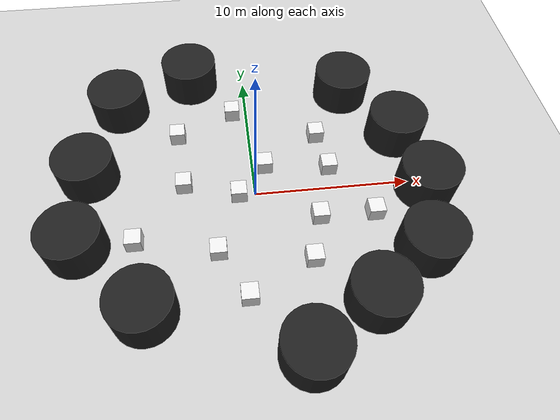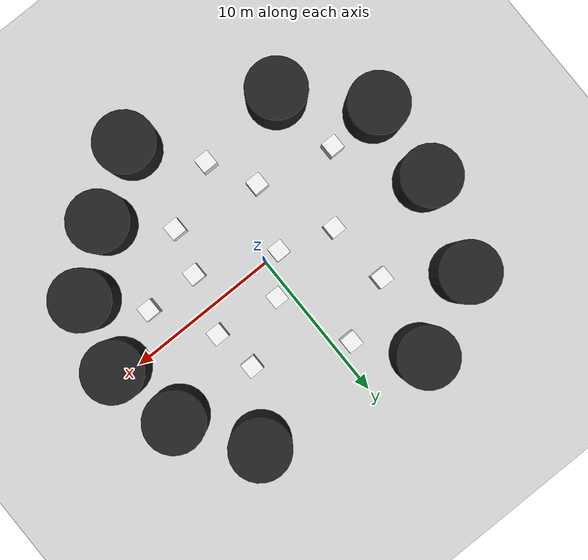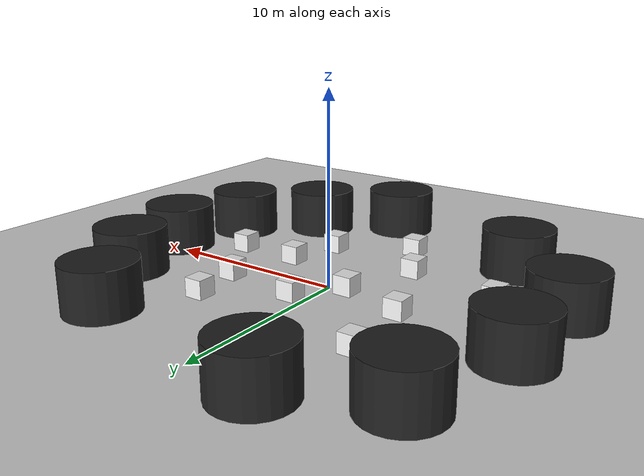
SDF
<sdf version="1.7">
 <world name="default">
  <light name="sun" type="directional">
   <pose>0 0 10 0 -0 0</pose>
   <diffuse>0.8 0.8 0.8 1</diffuse>
   <specular>0.2 0.2 0.2 1</specular>
   <attenuation>
    <range>1000</range>
    <constant>0.9</constant>
    <linear>0.01</linear>
    <quadratic>0.001</quadratic>
   </attenuation>
   <direction>-0.5 0.1 -0.9</direction>
   <spot><inner_angle>0</inner_angle><outer_angle>0</outer_angle><falloff>0</falloff></spot>
  </light>
  <model name="ground_plane">
   <static>1</static>
   <link name="link">
    <collision name="collision">
     <geometry><plane><normal>0 0 1</normal><size>100 100</size></plane></geometry>
     <surface>
      <contact><collide_bitmask>65535</collide_bitmask></contact>
      <friction><ode><mu>100</mu><mu2>50</mu2></ode></friction>
     </surface>
    </collision>
    <visual name="visual">
     <cast_shadows>0</cast_shadows>
     <geometry><plane><normal>0 0 1</normal><size>100 100</size></plane></geometry>
     <material>
      <script><uri>file://media/materials/scripts/gazebo.material</uri><name>Gazebo/Grey</name></script>
     </material>
    </visual>
   </link>
  </model>
  <gravity>0 0 -9.8</gravity>
  <magnetic_field>6e-06 2.3e-05 -4.2e-05</magnetic_field>
  <atmosphere type="adiabatic"/>
  <physics type="ode">
   <max_step_size>0.001</max_step_size>
   <real_time_factor>1</real_time_factor>
   <real_time_update_rate>1000</real_time_update_rate>
  </physics>
  <scene><ambient>0.4 0.4 0.4 1</ambient><background>0.7 0.7 0.7 1</background><shadows>1</shadows></scene>
  <audio><device>default</device></audio>
  <spherical_coordinates>
   <surface_model>EARTH_WGS84</surface_model>
   <latitude_deg>0</latitude_deg>
   <longitude_deg>0</longitude_deg>
   <elevation>0</elevation>
   <heading_deg>0</heading_deg>
  </spherical_coordinates>
  <model name="unit_box">
   <pose>0.808134 2.09924 0.499995 0 1e-05 0</pose>
   <link name="link">
    <inertial>
     <mass>1</mass>
     <inertia>
      <ixx>0.166667</ixx>
      <ixy>0</ixy>
      <ixz>0</ixz>
      <iyy>0.166667</iyy>
      <iyz>0</iyz>
      <izz>0.166667</izz>
     </inertia>
    </inertial>
    <collision name="collision"><geometry><box><size>1 1 1</size></box></geometry></collision>
    <visual name="visual">
     <geometry><box><size>1 1 1</size></box></geometry>
     <material>
      <script><name>Gazebo/White</name><uri>file://media/materials/scripts/gazebo.material</uri></script>
     </material>
    </visual>
   </link>
  </model>
  <model name="unit_box_clone">
   <pose>3.83258 -2.13639 0.499995 1e-05 -0 0</pose>
   <link name="link">
    <inertial>
     <mass>1</mass>
     <inertia>
      <ixx>0.166667</ixx>
      <ixy>0</ixy>
      <ixz>0</ixz>
      <iyy>0.166667</iyy>
      <iyz>0</iyz>
      <izz>0.166667</izz>
     </inertia>
    </inertial>
    <collision name="collision"><geometry><box><size>1 1 1</size></box></geometry></collision>
    <visual name="visual">
     <geometry><box><size>1 1 1</size></box></geometry>
     <material>
      <script><name>Gazebo/White</name><uri>file://media/materials/scripts/gazebo.material</uri></script>
     </material>
    </visual>
   </link>
  </model>
  <model name="unit_box_clone_0">
   <pose>-2.58516 -4 0.499995 0 1e-05 0</pose>
   <link name="link">
    <inertial>
     <mass>1</mass>
     <inertia>
      <ixx>0.166667</ixx>
      <ixy>0</ixy>
      <ixz>0</ixz>
      <iyy>0.166667</iyy>
      <iyz>0</iyz>
      <izz>0.166667</izz>
     </inertia>
    </inertial>
    <collision name="collision"><geometry><box><size>1 1 1</size></box></geometry></collision>
    <visual name="visual">
     <geometry><box><size>1 1 1</size></box></geometry>
     <material>
      <script><name>Gazebo/White</name><uri>file://media/materials/scripts/gazebo.material</uri></script>
     </material>
    </visual>
   </link>
  </model>
  <model name="unit_box_clone_1">
   <pose>-4.54143 1.00001 0.499995 1e-05 -0 0</pose>
   <link name="link">
    <inertial>
     <mass>1</mass>
     <inertia>
      <ixx>0.166667</ixx>
      <ixy>0</ixy>
      <ixz>0</ixz>
      <iyy>0.166667</iyy>
      <iyz>0</iyz>
      <izz>0.166667</izz>
     </inertia>
    </inertial>
    <collision name="collision"><geometry><box><size>1 1 1</size></box></geometry></collision>
    <visual name="visual">
     <geometry><box><size>1 1 1</size></box></geometry>
     <material>
      <script><name>Gazebo/White</name><uri>file://media/materials/scripts/gazebo.material</uri></script>
     </material>
    </visual>
   </link>
  </model>
  <model name="unit_box_clone_2">
   <pose>3 -5 0.499995 0 1e-05 0</pose>
   <link name="link">
    <inertial>
     <mass>1</mass>
     <inertia>
      <ixx>0.166667</ixx>
      <ixy>0</ixy>
      <ixz>0</ixz>
      <iyy>0.166667</iyy>
      <iyz>0</iyz>
      <izz>0.166667</izz>
     </inertia>
    </inertial>
    <collision name="collision"><geometry><box><size>1 1 1</size></box></geometry></collision>
    <visual name="visual">
     <geometry><box><size>1 1 1</size></box></geometry>
     <material>
      <script><name>Gazebo/White</name><uri>file://media/materials/scripts/gazebo.material</uri></script>
     </material>
    </visual>
   </link>
  </model>
  <model name="unit_box_clone_3">
   <pose>5 1.58247 0.499995 1e-05 -0 0</pose>
   <link name="link">
    <inertial>
     <mass>1</mass>
     <inertia>
      <ixx>0.166667</ixx>
      <ixy>0</ixy>
      <ixz>0</ixz>
      <iyy>0.166667</iyy>
      <iyz>0</iyz>
      <izz>0.166667</izz>
     </inertia>
    </inertial>
    <collision name="collision"><geometry><box><size>1 1 1</size></box></geometry></collision>
    <visual name="visual">
     <geometry><box><size>1 1 1</size></box></geometry>
     <material>
      <script><name>Gazebo/White</name><uri>file://media/materials/scripts/gazebo.material</uri></script>
     </material>
    </visual>
   </link>
  </model>
  <model name="unit_box_clone_4">
   <pose>-1.00001 7 0.499995 1e-05 -0 0</pose>
   <link name="link">
    <inertial>
     <mass>1</mass>
     <inertia>
      <ixx>0.166667</ixx>
      <ixy>0</ixy>
      <ixz>0</ixz>
      <iyy>0.166667</iyy>
      <iyz>0</iyz>
      <izz>0.166667</izz>
     </inertia>
    </inertial>
    <collision name="collision"><geometry><box><size>1 1 1</size></box></geometry></collision>
    <visual name="visual">
     <geometry><box><size>1 1 1</size></box></geometry>
     <material>
      <script><name>Gazebo/White</name><uri>file://media/materials/scripts/gazebo.material</uri></script>
     </material>
    </visual>
   </link>
  </model>
  <model name="unit_box_clone_5">
   <pose>-7.59948 -2.9058 0.499995 0 1e-05 0</pose>
   <link name="link">
    <inertial>
     <mass>1</mass>
     <inertia>
      <ixx>0.166667</ixx>
      <ixy>0</ixy>
      <ixz>0</ixz>
      <iyy>0.166667</iyy>
      <iyz>0</iyz>
      <izz>0.166667</izz>
     </inertia>
    </inertial>
    <collision name="collision"><geometry><box><size>1 1 1</size></box></geometry></collision>
    <visual name="visual">
     <geometry><box><size>1 1 1</size></box></geometry>
     <material>
      <script><name>Gazebo/White</name><uri>file://media/materials/scripts/gazebo.material</uri></script>
     </material>
    </visual>
   </link>
  </model>
  <model name="unit_box_clone_6">
   <pose>-1.00001 -7 0.499995 1e-05 -0 0</pose>
   <link name="link">
    <inertial>
     <mass>1</mass>
     <inertia>
      <ixx>0.166667</ixx>
      <ixy>0</ixy>
      <ixz>0</ixz>
      <iyy>0.166667</iyy>
      <iyz>0</iyz>
      <izz>0.166667</izz>
     </inertia>
    </inertial>
    <collision name="collision"><geometry><box><size>1 1 1</size></box></geometry></collision>
    <visual name="visual">
     <geometry><box><size>1 1 1</size></box></geometry>
     <material>
      <script><name>Gazebo/White</name><uri>file://media/materials/scripts/gazebo.material</uri></script>
     </material>
    </visual>
   </link>
  </model>
  <model name="unit_box_clone_7">
   <pose>-1.05827 -0.021586 0.499995 0 1e-05 0</pose>
   <link name="link">
    <inertial>
     <mass>1</mass>
     <inertia>
      <ixx>0.166667</ixx>
      <ixy>0</ixy>
      <ixz>0</ixz>
      <iyy>0.166667</iyy>
      <iyz>0</iyz>
      <izz>0.166667</izz>
     </inertia>
    </inertial>
    <collision name="collision"><geometry><box><size>1 1 1</size></box></geometry></collision>
    <visual name="visual">
     <geometry><box><size>1 1 1</size></box></geometry>
     <material>
      <script><name>Gazebo/White</name><uri>file://media/materials/scripts/gazebo.material</uri></script>
     </material>
    </visual>
   </link>
  </model>
  <model name="unit_box_clone_8">
   <pose>-4.86791 5.16709 0.499995 1e-05 -0 0</pose>
   <link name="link">
    <inertial>
     <mass>1</mass>
     <inertia>
      <ixx>0.166667</ixx>
      <ixy>0</ixy>
      <ixz>0</ixz>
      <iyy>0.166667</iyy>
      <iyz>0</iyz>
      <izz>0.166667</izz>
     </inertia>
    </inertial>
    <collision name="collision"><geometry><box><size>1 1 1</size></box></geometry></collision>
    <visual name="visual">
     <geometry><box><size>1 1 1</size></box></geometry>
     <material>
      <script><name>Gazebo/White</name><uri>file://media/materials/scripts/gazebo.material</uri></script>
     </material>
    </visual>
   </link>
  </model>
  <model name="unit_box_clone_9">
   <pose>4.59739 4.40156 0.499995 0 1e-05 0</pose>
   <link name="link">
    <inertial>
     <mass>1</mass>
     <inertia>
      <ixx>0.166667</ixx>
      <ixy>0</ixy>
      <ixz>0</ixz>
      <iyy>0.166667</iyy>
      <iyz>0</iyz>
      <izz>0.166667</izz>
     </inertia>
    </inertial>
    <collision name="collision"><geometry><box><size>1 1 1</size></box></geometry></collision>
    <visual name="visual">
     <geometry><box><size>1 1 1</size></box></geometry>
     <material>
      <script><name>Gazebo/White</name><uri>file://media/materials/scripts/gazebo.material</uri></script>
     </material>
    </visual>
   </link>
  </model>
  <model name="unit_box_clone_10">
   <pose>7.31295 -2.17579 0.499995 1e-05 -0 0</pose>
   <link name="link">
    <inertial>
     <mass>1</mass>
     <inertia>
      <ixx>0.166667</ixx>
      <ixy>0</ixy>
      <ixz>0</ixz>
      <iyy>0.166667</iyy>
      <iyz>0</iyz>
      <izz>0.166667</izz>
     </inertia>
    </inertial>
    <collision name="collision"><geometry><box><size>1 1 1</size></box></geometry></collision>
    <visual name="visual">
     <geometry><box><size>1 1 1</size></box></geometry>
     <material>
      <script><name>Gazebo/White</name><uri>file://media/materials/scripts/gazebo.material</uri></script>
     </material>
    </visual>
   </link>
  </model>
  <model name="unit_cylinder">
   <pose>-6.85905 -7.4303 1.26798 0 -0 5.3e-05</pose>
   <link name="link">
    <inertial>
     <mass>1</mass>
     <inertia><ixx>0.145833</ixx><ixy>0</ixy><ixz>0</ixz><iyy>0.145833</iyy><iyz>0</iyz><izz>0.125</izz></inertia>
    </inertial>
    <collision name="collision">
     <geometry><cylinder><radius>1.91047</radius><length>2.53596</length></cylinder></geometry>
    </collision>
    <visual name="visual">
     <geometry><cylinder><radius>1.91047</radius><length>2.53596</length></cylinder></geometry>
     <material>
      <script><name>Gazebo/Black</name><uri>file://media/materials/scripts/gazebo.material</uri></script>
     </material>
    </visual>
   </link>
  </model>
  <model name="unit_cylinder_clone">
   <pose>-10.9781 -3 1.26798 0 -0 5.3e-05</pose>
   <link name="link">
    <inertial>
     <mass>1</mass>
     <inertia><ixx>0.145833</ixx><ixy>0</ixy><ixz>0</ixz><iyy>0.145833</iyy><iyz>0</iyz><izz>0.125</izz></inertia>
    </inertial>
    <collision name="collision">
     <geometry><cylinder><radius>1.91047</radius><length>2.53597</length></cylinder></geometry>
    </collision>
    <visual name="visual">
     <geometry><cylinder><radius>1.91047</radius><length>2.53597</length></cylinder></geometry>
     <material>
      <script><name>Gazebo/Black</name><uri>file://media/materials/scripts/gazebo.material</uri></script>
     </material>
    </visual>
   </link>
  </model>
  <model name="unit_cylinder_clone_0">
   <pose>-10.667 2.23647 1.26798 0 -0 5.3e-05</pose>
   <link name="link">
    <inertial>
     <mass>1</mass>
     <inertia><ixx>0.145833</ixx><ixy>0</ixy><ixz>0</ixz><iyy>0.145833</iyy><iyz>0</iyz><izz>0.125</izz></inertia>
    </inertial>
    <collision name="collision">
     <geometry><cylinder><radius>1.91047</radius><length>2.53597</length></cylinder></geometry>
    </collision>
    <visual name="visual">
     <geometry><cylinder><radius>1.91047</radius><length>2.53597</length></cylinder></geometry>
     <material>
      <script><name>Gazebo/Black</name><uri>file://media/materials/scripts/gazebo.material</uri></script>
     </material>
    </visual>
   </link>
  </model>
  <model name="unit_cylinder_clone_1">
   <pose>-8.8653 7.9995 1.26798 0 -0 5.3e-05</pose>
   <link name="link">
    <inertial>
     <mass>1</mass>
     <inertia><ixx>0.145833</ixx><ixy>0</ixy><ixz>0</ixz><iyy>0.145833</iyy><iyz>0</iyz><izz>0.125</izz></inertia>
    </inertial>
    <collision name="collision">
     <geometry><cylinder><radius>1.91047</radius><length>2.53597</length></cylinder></geometry>
    </collision>
    <visual name="visual">
     <geometry><cylinder><radius>1.91047</radius><length>2.53597</length></cylinder></geometry>
     <material>
      <script><name>Gazebo/Black</name><uri>file://media/materials/scripts/gazebo.material</uri></script>
     </material>
    </visual>
   </link>
  </model>
  <model name="unit_cylinder_clone_2">
   <pose>-3.8335 10.2981 1.26798 0 -0 5.3e-05</pose>
   <link name="link">
    <inertial>
     <mass>1</mass>
     <inertia><ixx>0.145833</ixx><ixy>0</ixy><ixz>0</ixz><iyy>0.145833</iyy><iyz>0</iyz><izz>0.125</izz></inertia>
    </inertial>
    <collision name="collision">
     <geometry><cylinder><radius>1.91047</radius><length>2.53597</length></cylinder></geometry>
    </collision>
    <visual name="visual">
     <geometry><cylinder><radius>1.91047</radius><length>2.53597</length></cylinder></geometry>
     <material>
      <script><name>Gazebo/Black</name><uri>file://media/materials/scripts/gazebo.material</uri></script>
     </material>
    </visual>
   </link>
  </model>
  <model name="unit_cylinder_clone_3">
   <pose>7.08288 8.3023 1.26798 0 -0 5.3e-05</pose>
   <link name="link">
    <inertial>
     <mass>1</mass>
     <inertia><ixx>0.145833</ixx><ixy>0</ixy><ixz>0</ixz><iyy>0.145833</iyy><iyz>0</iyz><izz>0.125</izz></inertia>
    </inertial>
    <collision name="collision">
     <geometry><cylinder><radius>1.91047</radius><length>2.53597</length></cylinder></geometry>
    </collision>
    <visual name="visual">
     <geometry><cylinder><radius>1.91047</radius><length>2.53597</length></cylinder></geometry>
     <material>
      <script><name>Gazebo/Black</name><uri>file://media/materials/scripts/gazebo.material</uri></script>
     </material>
    </visual>
   </link>
  </model>
  <model name="unit_cylinder_clone_4">
   <pose>9.97073 3.94199 1.26798 0 -0 5.3e-05</pose>
   <link name="link">
    <inertial>
     <mass>1</mass>
     <inertia><ixx>0.145833</ixx><ixy>0</ixy><ixz>0</ixz><iyy>0.145833</iyy><iyz>0</iyz><izz>0.125</izz></inertia>
    </inertial>
    <collision name="collision">
     <geometry><cylinder><radius>1.91047</radius><length>2.53597</length></cylinder></geometry>
    </collision>
    <visual name="visual">
     <geometry><cylinder><radius>1.91047</radius><length>2.53597</length></cylinder></geometry>
     <material>
      <script><name>Gazebo/Black</name><uri>file://media/materials/scripts/gazebo.material</uri></script>
     </material>
    </visual>
   </link>
  </model>
  <model name="unit_cylinder_clone_5">
   <pose>10.9268 -0.561901 1.26798 0 -0 5.3e-05</pose>
   <link name="link">
    <inertial>
     <mass>1</mass>
     <inertia><ixx>0.145833</ixx><ixy>0</ixy><ixz>0</ixz><iyy>0.145833</iyy><iyz>0</iyz><izz>0.125</izz></inertia>
    </inertial>
    <collision name="collision">
     <geometry><cylinder><radius>1.91047</radius><length>2.53597</length></cylinder></geometry>
    </collision>
    <visual name="visual">
     <geometry><cylinder><radius>1.91047</radius><length>2.53597</length></cylinder></geometry>
     <material>
      <script><name>Gazebo/Black</name><uri>file://media/materials/scripts/gazebo.material</uri></script>
     </material>
    </visual>
   </link>
  </model>
  <model name="unit_cylinder_clone_6">
   <pose>9.80184 -4.99809 1.26798 0 -0 5.3e-05</pose>
   <link name="link">
    <inertial>
     <mass>1</mass>
     <inertia><ixx>0.145833</ixx><ixy>0</ixy><ixz>0</ixz><iyy>0.145833</iyy><iyz>0</iyz><izz>0.125</izz></inertia>
    </inertial>
    <collision name="collision">
     <geometry><cylinder><radius>1.91047</radius><length>2.53597</length></cylinder></geometry>
    </collision>
    <visual name="visual">
     <geometry><cylinder><radius>1.91047</radius><length>2.53597</length></cylinder></geometry>
     <material>
      <script><name>Gazebo/Black</name><uri>file://media/materials/scripts/gazebo.material</uri></script>
     </material>
    </visual>
   </link>
  </model>
  <model name="unit_cylinder_clone_7">
   <pose>6.12282 -7.93557 1.26798 0 -0 5.3e-05</pose>
   <link name="link">
    <inertial>
     <mass>1</mass>
     <inertia><ixx>0.145833</ixx><ixy>0</ixy><ixz>0</ixz><iyy>0.145833</iyy><iyz>0</iyz><izz>0.125</izz></inertia>
    </inertial>
    <collision name="collision">
     <geometry><cylinder><radius>1.91047</radius><length>2.53597</length></cylinder></geometry>
    </collision>
    <visual name="visual">
     <geometry><cylinder><radius>1.91047</radius><length>2.53597</length></cylinder></geometry>
     <material>
      <script><name>Gazebo/Black</name><uri>file://media/materials/scripts/gazebo.material</uri></script>
     </material>
    </visual>
   </link>
  </model>
  <model name="unit_cylinder_clone_8">
   <pose>2.0258 -10.5716 1.26798 0 -0 5.3e-05</pose>
   <link name="link">
    <inertial>
     <mass>1</mass>
     <inertia><ixx>0.145833</ixx><ixy>0</ixy><ixz>0</ixz><iyy>0.145833</iyy><iyz>0</iyz><izz>0.125</izz></inertia>
    </inertial>
    <collision name="collision">
     <geometry><cylinder><radius>1.91047</radius><length>2.53597</length></cylinder></geometry>
    </collision>
    <visual name="visual">
     <geometry><cylinder><radius>1.91047</radius><length>2.53597</length></cylinder></geometry>
     <material>
      <script><name>Gazebo/Black</name><uri>file://media/materials/scripts/gazebo.material</uri></script>
     </material>
    </visual>
   </link>
  </model>
 </world>
</sdf>
